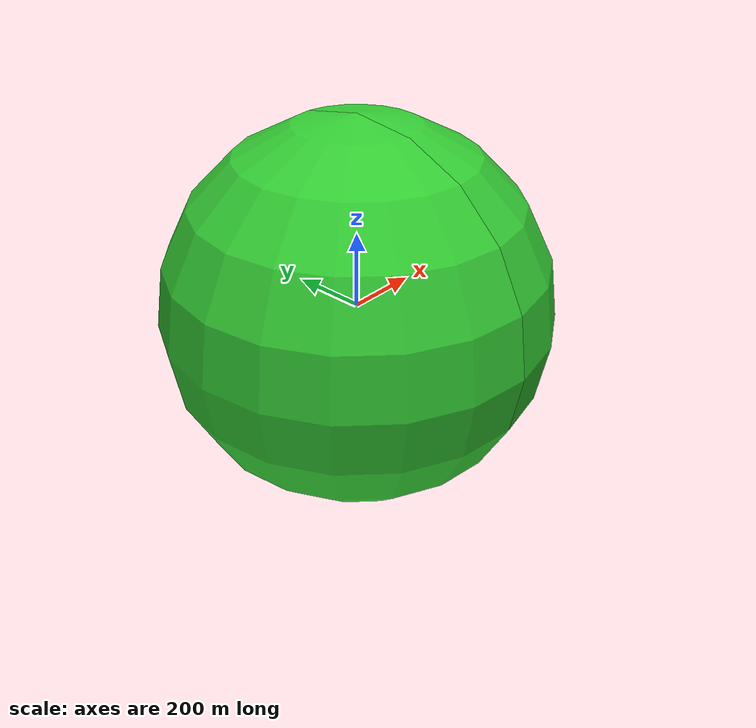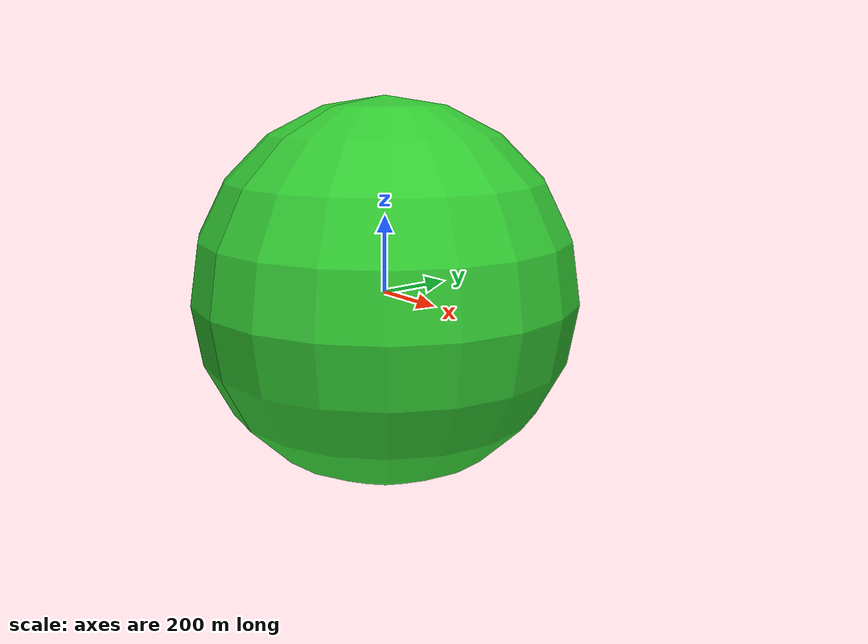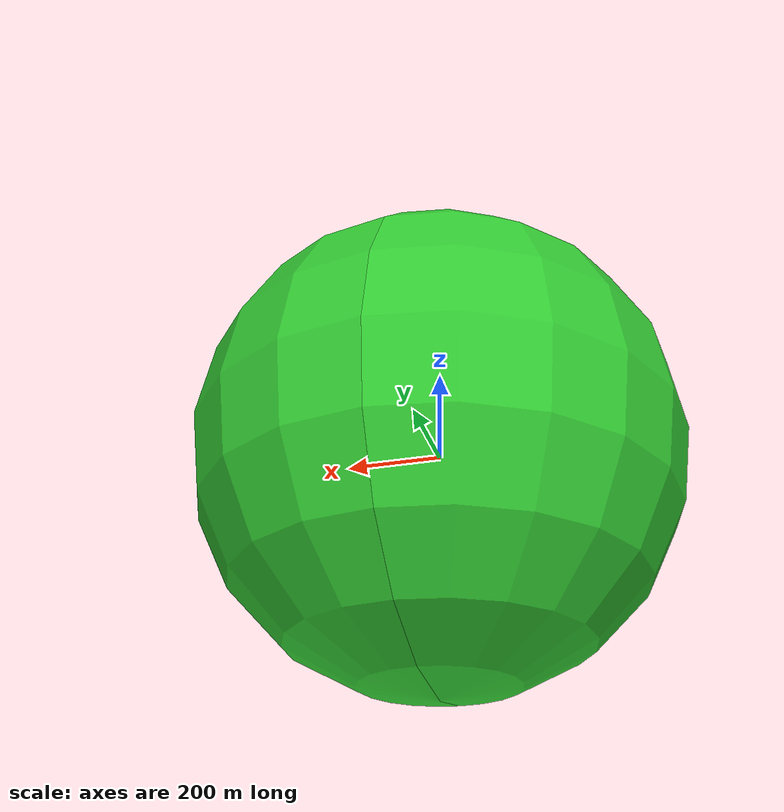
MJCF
<mujoco>
  <option gravity="0 0 -9.81" />
  <worldbody>

    <body name="object_1" pos="0 0 1">
      <geom type="capsule" fromto="0 0 0 0 0 -1" size="0.1" rgba="0.7 0.7 0.7 1" />
      <joint name="object_1_joint" type="free" />
    </body>

    <body name="object_2" pos="0 0 0">
      <geom type="box" size="0.3 0.3 0.3" rgba="0.7 0.7 0.7 1" />
    </body>
  <body name="arm_left_in" pos="-0.2 0.0 1.5"><geom type="sphere" size="500" rgba="0.2 0.8 0.2 1.0" /></body><body name="arm_right_in" pos="0.2 0.0 1.5"><geom type="sphere" size="500" rgba="0.2 0.8 0.2 1.0" /></body></worldbody>
<joint name="joint_left_arm_object_1" type="revolute" body1="left_arm" body2="object_1" /><joint name="joint_right_arm_object_1" type="revolute" body1="right_arm" body2="object_1" /><joint name="joint_arm_left_extended_object_1" type="revolute" body1="arm_left_extended" body2="object_1" /><joint name="joint_arm_right_extended_object_1" type="revolute" body1="arm_right_extended" body2="object_1" /></mujoco>
